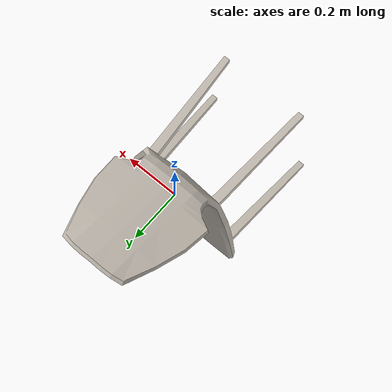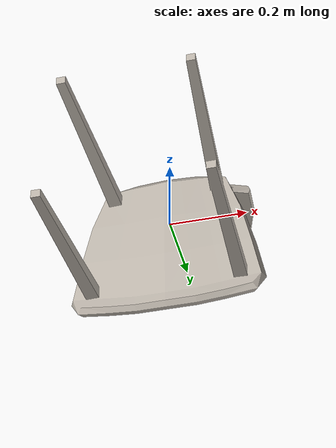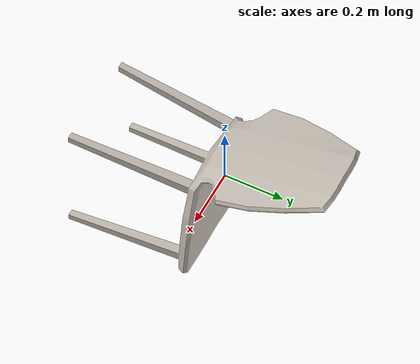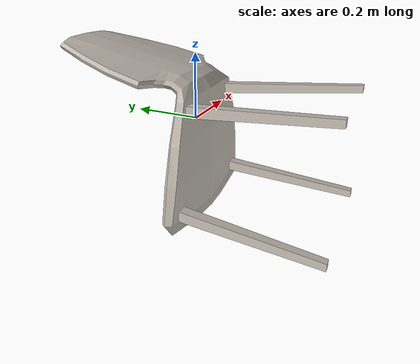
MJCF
<mujoco model="frl_apartment_chair_04">
  <asset>
    <texture type="2d" name="11gfdgdg" file="11gfdgdg.png"/>
    <material name="11gfdgdg" texture="11gfdgdg" specular="0.5" shininess="0.5"/>
    <mesh file="frl_apartment_chair_04.obj" name="frl_apartment_chair_04_mesh" scale="1.0 1.0 1.0"/>
  </asset>
  <worldbody>
    <body>
      <body name="object">
        <geom solimp="0.998 0.998 0.001" solref="0.001 1" density="500" friction="0.95 0.3 0.1" type="mesh" mesh="frl_apartment_chair_04_mesh" conaffinity="1" contype="1" group="1" material="11gfdgdg"/>
      </body>
      <site rgba="0 0 0 0" size="0.005" pos="0 0 0" name="bottom_site"/>
      <site rgba="0 0 0 0" size="0.005" pos="0 0 0.9" name="top_site"/>
      <site rgba="0 0 0 0" size="0.005" pos="0.25 0.25 0.45" name="horizontal_radius_site"/>
    </body>
  </worldbody>
</mujoco>
